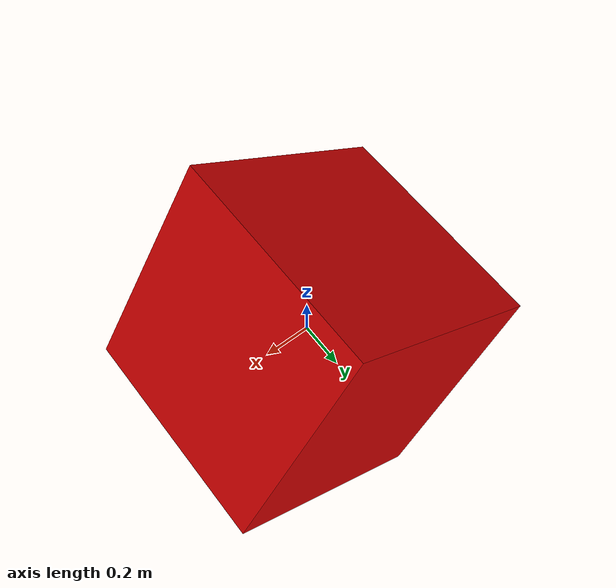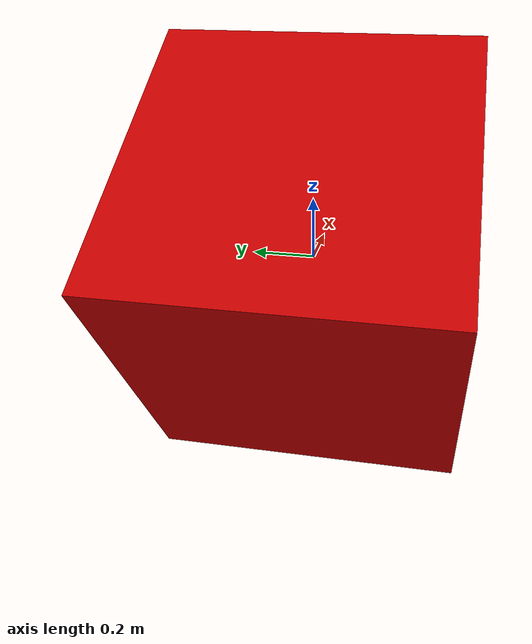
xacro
<?xml version="1.0" encoding="utf-8"?>

<robot name="carry_model">
  <material name="Red">
    <color rgba="0.8 0.0 0.0 1.0"/>
  </material>

  <link name="carry_on">

    <visual>
      <origin rpy="0.00001 1.0 0.00001" xyz="0.00001 0.00001 0"/>
      <geometry>
        <box size="1 1 1" />
      </geometry>
      <material name="Red"/>
    </visual>
    <collision>
      <origin xyz="0.00001 0.00001 0" rpy="0.00001 1.0 0.00001 " />
      <geometry>

          <box size="1 1 1" />

      </geometry>
    </collision>
  </link>
  <gazebo reference="carry_on">
    <material>Gazebo/Red</material>
    <turnGravityOff>false</turnGravityOff>
  </gazebo>

</robot>
